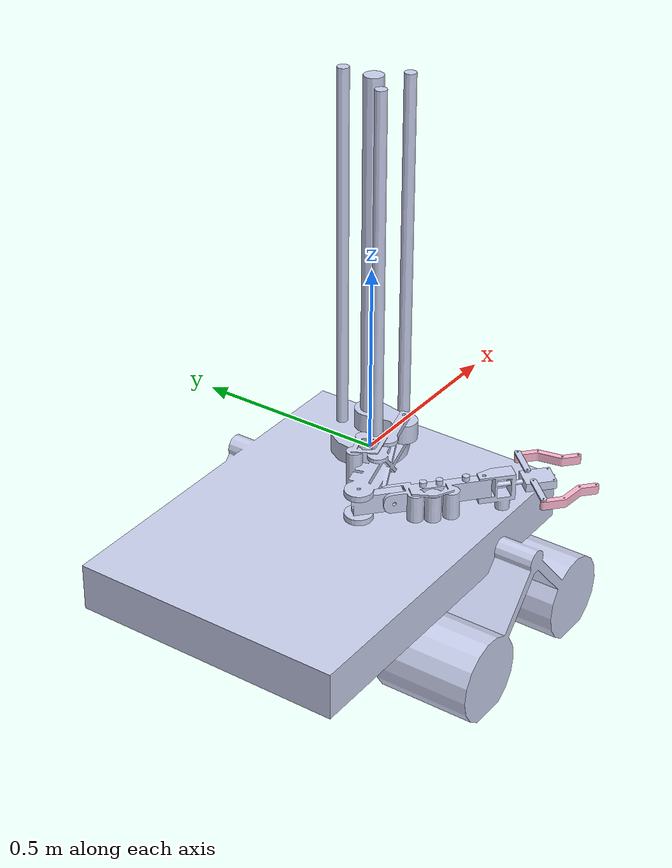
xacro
<?xml version="1.0"?>
<robot xmlns:xacro="http://www.ros.org/wiki/xacro" name="brc_arm_description">
    <xacro:arg name="initial_positions_file" default="initial_positions.yaml" />

    <!-- Import brc_arm_description urdf file -->
    <xacro:include filename="$(find brc_arm_description)/urdf/brc_arm_description.urdf" />

    <!-- Import control_xacro -->
    <xacro:include filename="brc_arm_description.ros2_control.xacro" />

    <xacro:brc_arm_description_ros2_control name="BRCArm" initial_positions_file="$(arg initial_positions_file)"/>

</robot>

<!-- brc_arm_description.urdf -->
<robot
  name="brc_arm_description">
  <link
    name="base_link">
    <inertial>
      <origin
        xyz="-0.2365 -0.11407 0.091275"
        rpy="0 0 0" />
      <mass
        value="127.99" />
      <inertia
        ixx="11.646"
        ixy="0.74605"
        ixz="0.11702"
        iyy="17.633"
        iyz="0.24149"
        izz="13.254" />
    </inertial>
    <visual>
      <origin
        xyz="0 0 0"
        rpy="0 0 0" />
      <geometry>
        <mesh
          filename="package://brc_arm_description/meshes/base_link.STL" />
      </geometry>
      <material
        name="">
        <color
          rgba="0.79216 0.81961 0.93333 1" />
      </material>
    </visual>
    <collision>
      <origin
        xyz="0 0 0"
        rpy="0 0 0" />
      <geometry>
        <mesh
          filename="package://brc_arm_description/meshes/base_link.STL" />
      </geometry>
    </collision>
  </link>
  <link
    name="carriage_link">
    <inertial>
      <origin
        xyz="2.5422E-18 0.025 0.053905"
        rpy="0 0 0" />
      <mass
        value="0.44772" />
      <inertia
        ixx="0.001099"
        ixy="8.147E-21"
        ixz="1.4734E-20"
        iyy="0.0011932"
        iyz="-4.9973E-22"
        izz="0.00028077" />
    </inertial>
    <visual>
      <origin
        xyz="0 0 0"
        rpy="0 0 0" />
      <geometry>
        <mesh
          filename="package://brc_arm_description/meshes/carriage_link.STL" />
      </geometry>
      <material
        name="">
        <color
          rgba="0.79216 0.81961 0.93333 1" />
      </material>
    </visual>
    <collision>
      <origin
        xyz="0 0 0"
        rpy="0 0 0" />
      <geometry>
        <mesh
          filename="package://brc_arm_description/meshes/carriage_link.STL" />
      </geometry>
    </collision>
  </link>
  <joint
    name="carriage_joint"
    type="prismatic">
    <origin
      xyz="0 0 0.065"
      rpy="1.5708 0 0" />
    <parent
      link="base_link" />
    <child
      link="carriage_link" />
    <axis
      xyz="0 1 0" />
    <limit
      lower="0"
      upper="0.885"
      effort="0"
      velocity="0" />
    <command_interface name="position" />
    <command_interface name="velocity" />
    <state_interface name="position">
    </state_interface>
    <state_interface name="velocity" />
  </joint>
  <link
    name="midarm1_link">
    <inertial>
      <origin
        xyz="-0.20356 0.024067 -0.023364"
        rpy="0 0 0" />
      <mass
        value="0.8362" />
      <inertia
        ixx="0.0015195"
        ixy="-0.00010292"
        ixz="0.00024052"
        iyy="0.007027"
        iyz="-9.3176E-05"
        izz="0.0071837" />
    </inertial>
    <visual>
      <origin
        xyz="0 0 0"
        rpy="0 0 0" />
      <geometry>
        <mesh
          filename="package://brc_arm_description/meshes/midarm1_link.STL" />
      </geometry>
      <material
        name="">
        <color
          rgba="0.79216 0.81961 0.93333 1" />
      </material>
    </visual>
    <collision>
      <origin
        xyz="0 0 0"
        rpy="0 0 0" />
      <geometry>
        <mesh
          filename="package://brc_arm_description/meshes/midarm1_link.STL" />
      </geometry>
    </collision>
  </link>
  <joint
    name="midarm1_joint"
    type="revolute">
    <origin
      xyz="0 0 0.1"
      rpy="0 0.2793 0" />
    <parent
      link="carriage_link" />
    <child
      link="midarm1_link" />
    <axis
      xyz="0 1 0" />
    <limit
      lower="0"
      upper="2.7423"
      effort="0"
      velocity="0" />
    <command_interface name="position" />
    <command_interface name="velocity" />
    <state_interface name="position">
    </state_interface>
    <state_interface name="velocity" />
  </joint>
  <link
    name="midarm2_link">
    <inertial>
      <origin
        xyz="0.0437798591057959 0.0206817493001328 2.4980018054066E-16"
        rpy="0 0 0" />
      <mass
        value="0.0646775902886998" />
      <inertia
        ixx="2.3728145359128E-05"
        ixy="-1.49350689133807E-06"
        ixz="1.33407689192552E-19"
        iyy="7.7948360762991E-05"
        iyz="1.18849310411619E-20"
        izz="9.1312862306253E-05" />
    </inertial>
    <visual>
      <origin
        xyz="0 0 0"
        rpy="0 0 0" />
      <geometry>
        <mesh
          filename="package://brc_arm_description/meshes/midarm2_link.STL" />
      </geometry>
      <material
        name="">
        <color
          rgba="0.792156862745098 0.819607843137255 0.933333333333333 1" />
      </material>
    </visual>
    <collision>
      <origin
        xyz="0 0 0"
        rpy="0 0 0" />
      <geometry>
        <mesh
          filename="package://brc_arm_description/meshes/midarm2_link.STL" />
      </geometry>
    </collision>
  </link>
  <joint
    name="midarm2_joint"
    type="revolute">
    <origin
      xyz="-0.35 0 0"
      rpy="0 -1.000 0" />
    <parent
      link="midarm1_link" />
    <child
      link="midarm2_link" />
    <axis
      xyz="0 1 0" />
    <limit
      lower="-4.7124"
      upper="0"
      effort="0"
      velocity="0" />
    <command_interface name="position" />
    <command_interface name="velocity" />
    <state_interface name="position">
    </state_interface>
    <state_interface name="velocity" />
  </joint>
  <link
    name="wrist1_link">
    <inertial>
      <origin
        xyz="0.0903131624724207 -0.00462740982819057 0.0208801756228061"
        rpy="0 0 0" />
      <mass
        value="0.419666572951629" />
      <inertia
        ixx="0.000346854880152641"
        ixy="2.70709984964626E-06"
        ixz="-5.02615984609935E-05"
        iyy="0.00143713508844135"
        iyz="3.62665449634077E-05"
        izz="0.00143304792270374" />
    </inertial>
    <visual>
      <origin
        xyz="0 0 0"
        rpy="0 0 0" />
      <geometry>
        <mesh
          filename="package://brc_arm_description/meshes/wrist1_link.STL" />
      </geometry>
      <material
        name="">
        <color
          rgba="0.792156862745098 0.819607843137255 0.933333333333333 1" />
      </material>
    </visual>
    <collision>
      <origin
        xyz="0 0 0"
        rpy="0 0 0" />
      <geometry>
        <mesh
          filename="package://brc_arm_description/meshes/wrist1_link.STL" />
      </geometry>
    </collision>
  </link>
  <joint
    name="wrist1_joint"
    type="revolute">
    <origin
      xyz="0.08 0.025 0"
      rpy="0 0 0" />
    <parent
      link="midarm2_link" />
    <child
      link="wrist1_link" />
    <axis
      xyz="0 0 1" />
    <limit
      lower="-1.57"
      upper="0.523"
      effort="0"
      velocity="0" />
    <command_interface name="position" />
    <command_interface name="velocity" />
    <state_interface name="position">
    </state_interface>
    <state_interface name="velocity" />
  </joint>
  <link
    name="wrist2_link">
    <inertial>
      <origin
        xyz="0.043767510273945 0.018260701276372 0.0065358362738916"
        rpy="0 0 0" />
      <mass
        value="0.129512939632169" />
      <inertia
        ixx="0.000129578871276748"
        ixy="2.78573307339072E-06"
        ixz="-2.66314903931951E-06"
        iyy="8.51895227169166E-05"
        iyz="-9.11411436035313E-07"
        izz="0.000185624075448265" />
    </inertial>
    <visual>
      <origin
        xyz="0 0 0"
        rpy="0 0 0" />
      <geometry>
        <mesh
          filename="package://brc_arm_description/meshes/wrist2_link.STL" />
      </geometry>
      <material
        name="">
        <color
          rgba="0.792156862745098 0.819607843137255 0.933333333333333 1" />
      </material>
    </visual>
    <collision>
      <origin
        xyz="0 0 0"
        rpy="0 0 0" />
      <geometry>
        <mesh
          filename="package://brc_arm_description/meshes/wrist2_link.STL" />
      </geometry>
    </collision>
  </link>
  <joint
    name="wrist2_joint"
    type="revolute">
    <origin
      xyz="0.225 0 0"
      rpy="0 -3.1241 3.1416" />
    <parent
      link="wrist1_link" />
    <child
      link="wrist2_link" />
    <axis
      xyz="0 1 0" />
    <limit
      lower="-1.9024"
      upper="2.2626"
      effort="0"
      velocity="0" />
    <command_interface name="position" />
    <command_interface name="velocity" />
    <state_interface name="position">
    </state_interface>
    <state_interface name="velocity" />
  </joint>
  <link
    name="EEbase_link">
    <inertial>
      <origin
        xyz="2.4980018054066E-16 -2.51187959321442E-15 -0.0327794628998193"
        rpy="0 0 0" />
      <mass
        value="0.0926044760959502" />
      <inertia
        ixx="4.81318826783348E-05"
        ixy="-1.57510711271281E-20"
        ixz="2.37169225231204E-20"
        iyy="7.32482359165231E-05"
        iyz="-9.81194031396023E-20"
        izz="3.29932559448168E-05" />
    </inertial>
    <visual>
      <origin
        xyz="0 0 0"
        rpy="0 0 0" />
      <geometry>
        <mesh
          filename="package://brc_arm_description/meshes/EEbase_link.STL" />
      </geometry>
      <material
        name="">
        <color
          rgba="0.792156862745098 0.819607843137255 0.933333333333333 1" />
      </material>
    </visual>
    <collision>
      <origin
        xyz="0 0 0"
        rpy="0 0 0" />
      <geometry>
        <mesh
          filename="package://brc_arm_description/meshes/EEbase_link.STL" />
      </geometry>
    </collision>
  </link>
  <joint
    name="EEbase_joint"
    type="continuous">
    <origin
      xyz="0.10009 0 0"
      rpy="0 -1.5708 0" />
    <parent
      link="wrist2_link" />
    <child
      link="EEbase_link" />
    <axis
      xyz="0 0 1" />
    <command_interface name="position" />
    <command_interface name="velocity" />
    <state_interface name="position">
    </state_interface>
    <state_interface name="velocity" />
  </joint>
  <link
    name="Rlink_link">
    <inertial>
      <origin
        xyz="0.04 -0.00249999999998814 0"
        rpy="0 0 0" />
      <mass
        value="0.00668722339297278" />
      <inertia
        ixx="1.38550163626324E-07"
        ixy="2.87147608995584E-21"
        ixz="-8.50341669704512E-21"
        iyy="4.66129432520503E-06"
        iyz="-3.29637280409798E-22"
        izz="4.55060759238276E-06" />
    </inertial>
    <visual>
      <origin
        xyz="0 0 0"
        rpy="0 0 0" />
      <geometry>
        <mesh
          filename="package://brc_arm_description/meshes/Rlink_link.STL" />
      </geometry>
      <material
        name="">
        <color
          rgba="0.792156862745098 0.819607843137255 0.933333333333333 1" />
      </material>
    </visual>
    <collision>
      <origin
        xyz="0 0 0"
        rpy="0 0 0" />
      <geometry>
        <mesh
          filename="package://brc_arm_description/meshes/Rlink_link.STL" />
      </geometry>
    </collision>
  </link>
  <joint
    name="Rlink_joint"
    type="revolute">
    <origin
      xyz="0.0240000000000002 -0.0110000000000023 -0.0140949701532811"
      rpy="0 0 0" />
    <parent
      link="EEbase_link" />
    <child
      link="Rlink_link" />
    <axis
      xyz="0 1 0" />
    <limit
      lower="0"
      upper="1.30"
      effort="0"
      velocity="0" />
    <command_interface name="position" />
    <command_interface name="velocity" />
    <state_interface name="position">
    </state_interface>
    <state_interface name="velocity" />
  </joint>
  <link
    name="Rfinger_link">
    <inertial>
      <origin
        xyz="0.0174831476155699 0.0707338411471632 -0.0110000000000118"
        rpy="0 0 0" />
      <mass
        value="0.052748844949343" />
      <inertia
        ixx="9.60936833531591E-05"
        ixy="-3.36352218446777E-05"
        ixz="3.61752768954145E-20"
        iyy="1.68927505422671E-05"
        iyz="8.41699531256108E-20"
        izz="0.000108731360402846" />
    </inertial>
    <visual>
      <origin
        xyz="0 0 0"
        rpy="0 0 0" />
      <geometry>
        <mesh
          filename="package://brc_arm_description/meshes/Rfinger_link.STL" />
      </geometry>
      <material
        name="">
        <color
          rgba="1 0.717647058823529 0.819607843137255 1" />
      </material>
    </visual>
    <collision>
      <origin
        xyz="0 0 0"
        rpy="0 0 0" />
      <geometry>
        <mesh
          filename="package://brc_arm_description/meshes/Rfinger_link.STL" />
      </geometry>
    </collision>
  </link>
  <joint
    name="Rfinger_joint"
    type="continuous">
    <origin
      xyz="0.0799999999999999 0 0"
      rpy="-1.5707963267949 0 -3.14159265358978" />
    <parent
      link="Rlink_link" />
    <child
      link="Rfinger_link" />
    <axis
      xyz="0 0 1" />
    <mimic
      joint="Rlink_joint"
      multiplier="1"
      offset="0" />
  </joint>
  <link
    name="Llink_link">
    <inertial>
      <origin
        xyz="-0.0399999999999926 -0.00249999999998818 -1.94289029309402E-15"
        rpy="0 0 0" />
      <mass
        value="0.00668722339297278" />
      <inertia
        ixx="1.38550163626324E-07"
        ixy="-2.82678766014272E-21"
        ixz="-8.30158462758219E-21"
        iyy="4.66129432520503E-06"
        iyz="-2.67304238201667E-22"
        izz="4.55060759238276E-06" />
    </inertial>
    <visual>
      <origin
        xyz="0 0 0"
        rpy="0 0 0" />
      <geometry>
        <mesh
          filename="package://brc_arm_description/meshes/Llink_link.STL" />
      </geometry>
      <material
        name="">
        <color
          rgba="0.792156862745098 0.819607843137255 0.933333333333333 1" />
      </material>
    </visual>
    <collision>
      <origin
        xyz="0 0 0"
        rpy="0 0 0" />
      <geometry>
        <mesh
          filename="package://brc_arm_description/meshes/Llink_link.STL" />
      </geometry>
    </collision>
  </link>
  <joint
    name="Llink_joint"
    type="continuous">
    <origin
      xyz="-0.0239999999999998 -0.0110000000000022 -0.0140949701532812"
      rpy="0 0 0" />
    <parent
      link="EEbase_link" />
    <child
      link="Llink_link" />
    <axis
      xyz="0 1 0" />
    <mimic
      joint="Rlink_joint"
      multiplier="-1"
      offset="0" />
  </joint>
  <link
    name="Lfinger_link">
    <inertial>
      <origin
        xyz="0.0174831476155701 0.0707338411471614 0.0110000000000118"
        rpy="0 0 0" />
      <mass
        value="0.052748844949343" />
      <inertia
        ixx="9.60936833531592E-05"
        ixy="-3.36352218446776E-05"
        ixz="1.1676008726569E-20"
        iyy="1.6892750542267E-05"
        iyz="3.01094951269791E-20"
        izz="0.000108731360402846" />
    </inertial>
    <visual>
      <origin
        xyz="0 0 0"
        rpy="0 0 0" />
      <geometry>
        <mesh
          filename="package://brc_arm_description/meshes/Lfinger_link.STL" />
      </geometry>
      <material
        name="">
        <color
          rgba="1 0.717647058823529 0.819607843137255 1" />
      </material>
    </visual>
    <collision>
      <origin
        xyz="0 0 0"
        rpy="0 0 0" />
      <geometry>
        <mesh
          filename="package://brc_arm_description/meshes/Lfinger_link.STL" />
      </geometry>
    </collision>
  </link>
  <joint
    name="Lfinger_joint"
    type="continuous">
    <origin
      xyz="-0.08 0 0"
      rpy="-1.5707963267949 0 0" />
    <parent
      link="Llink_link" />
    <child
      link="Lfinger_link" />
    <axis
      xyz="0 0 1" />
    <mimic
      joint="Llink_joint"
      multiplier="-1"
      offset="0" />
  </joint>
</robot>
